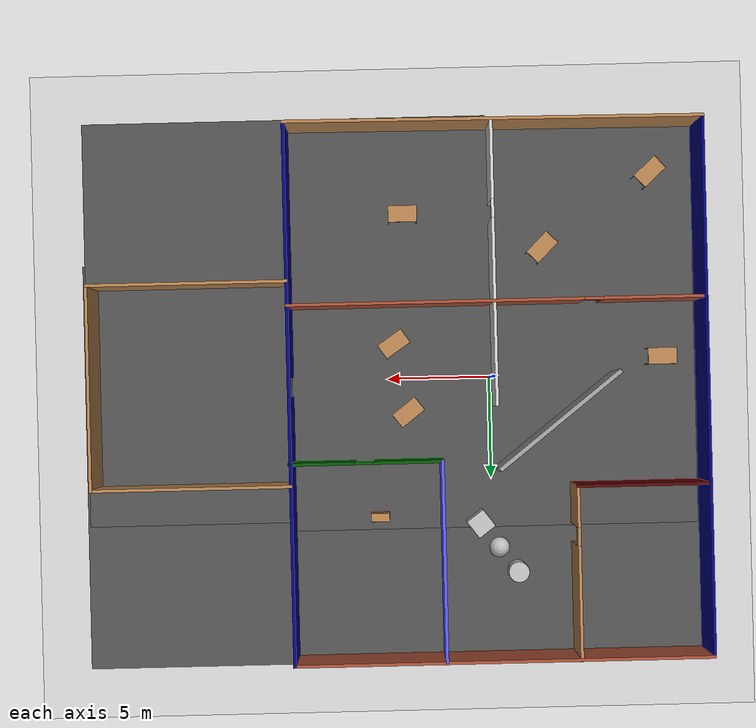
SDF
<sdf version="1.6">
 <world name="default">
  <light name="sun" type="directional">
   <pose>0 0 10 0 -0 0</pose>
   <diffuse>0.8 0.8 0.8 1</diffuse>
   <specular>0.1 0.1 0.1 1</specular>
   <attenuation>
    <range>1000</range>
    <constant>0.9</constant>
    <linear>0.01</linear>
    <quadratic>0.001</quadratic>
   </attenuation>
   <direction>-0.5 0.5 -1</direction>
  </light>
  <model name="ground_plane">
   <static>1</static>
   <link name="link">
    <collision name="collision">
     <geometry><plane><normal>0 0 1</normal><size>100 100</size></plane></geometry>
     <surface><friction><ode><mu>100</mu><mu2>50</mu2></ode></friction></surface>
    </collision>
    <visual name="visual">
     <cast_shadows>0</cast_shadows>
     <geometry><plane><normal>0 0 1</normal><size>100 100</size></plane></geometry>
     <material>
      <script><uri>file://media/materials/scripts/gazebo.material</uri><name>Gazebo/Grey</name></script>
     </material>
    </visual>
   </link>
  </model>
  <gravity>0 0 -9.8</gravity>
  <magnetic_field>6e-06 2.3e-05 -4.2e-05</magnetic_field>
  <atmosphere type="adiabatic"/>
  <physics name="default_physics" default="0" type="ode">
   <max_step_size>0.001</max_step_size>
   <real_time_factor>1</real_time_factor>
   <real_time_update_rate>1000</real_time_update_rate>
  </physics>
  <scene><ambient>0.4 0.4 0.4 1</ambient><background>0.7 0.7 0.7 1</background><shadows>1</shadows></scene>
  <spherical_coordinates>
   <surface_model>EARTH_WGS84</surface_model>
   <latitude_deg>0</latitude_deg>
   <longitude_deg>0</longitude_deg>
   <elevation>0</elevation>
   <heading_deg>0</heading_deg>
  </spherical_coordinates>
  <model name="asphalt_plane_2">
   <static>1</static>
   <link name="link">
    <collision name="collision"><geometry><box><size>20 20 0.1</size></box></geometry></collision>
    <visual name="visual">
     <cast_shadows>0</cast_shadows>
     <geometry><box><size>20 20 0.1</size></box></geometry>
     <material>
      <script>
       <uri>model://asphalt_plane/materials/scripts</uri>
       <uri>model://asphalt_plane/materials/textures</uri>
       <name>vrc/asphalt</name>
      </script>
     </material>
    </visual>
   </link>
   <pose>-0.236118 -2.56824 0 0 -0 0</pose>
  </model>
  <model name="bookshelf">
   <static>1</static>
   <link name="link">
    <inertial><mass>1</mass></inertial>
    <collision name="back">
     <pose>0 0.005 0.6 0 -0 0</pose>
     <geometry><box><size>0.9 0.01 1.2</size></box></geometry>
    </collision>
    <visual name="visual1">
     <pose>0 0.005 0.6 0 -0 0</pose>
     <geometry><box><size>0.9 0.01 1.2</size></box></geometry>
     <material>
      <script><uri>file://media/materials/scripts/gazebo.material</uri><name>Gazebo/Wood</name></script>
     </material>
    </visual>
    <collision name="left_side">
     <pose>0.45 -0.195 0.6 0 -0 0</pose>
     <geometry><box><size>0.02 0.4 1.2</size></box></geometry>
    </collision>
    <visual name="visual2">
     <pose>0.45 -0.195 0.6 0 -0 0</pose>
     <geometry><box><size>0.02 0.4 1.2</size></box></geometry>
     <material>
      <script><uri>file://media/materials/scripts/gazebo.material</uri><name>Gazebo/Wood</name></script>
     </material>
    </visual>
    <collision name="right_side">
     <pose>-0.45 -0.195 0.6 0 -0 0</pose>
     <geometry><box><size>0.02 0.4 1.2</size></box></geometry>
    </collision>
    <visual name="visual3">
     <pose>-0.45 -0.195 0.6 0 -0 0</pose>
     <geometry><box><size>0.02 0.4 1.2</size></box></geometry>
     <material>
      <script><uri>file://media/materials/scripts/gazebo.material</uri><name>Gazebo/Wood</name></script>
     </material>
    </visual>
    <collision name="bottom">
     <pose>0 -0.195 0.03 0 -0 0</pose>
     <geometry><box><size>0.88 0.4 0.06</size></box></geometry>
    </collision>
    <visual name="visual4">
     <pose>0 -0.195 0.03 0 -0 0</pose>
     <geometry><box><size>0.88 0.4 0.06</size></box></geometry>
     <material>
      <script><uri>file://media/materials/scripts/gazebo.material</uri><name>Gazebo/Wood</name></script>
     </material>
    </visual>
    <collision name="top">
     <pose>0 -0.195 1.19 0 -0 0</pose>
     <geometry><box><size>0.88 0.4 0.02</size></box></geometry>
    </collision>
    <visual name="visual5">
     <pose>0 -0.195 1.19 0 -0 0</pose>
     <geometry><box><size>0.88 0.4 0.02</size></box></geometry>
     <material>
      <script><uri>file://media/materials/scripts/gazebo.material</uri><name>Gazebo/Wood</name></script>
     </material>
    </visual>
    <collision name="low_shelf">
     <pose>0 -0.195 0.43 0 -0 0</pose>
     <geometry><box><size>0.88 0.4 0.02</size></box></geometry>
    </collision>
    <visual name="visual6">
     <pose>0 -0.195 0.43 0 -0 0</pose>
     <geometry><box><size>0.88 0.4 0.02</size></box></geometry>
     <material>
      <script><uri>file://media/materials/scripts/gazebo.material</uri><name>Gazebo/Wood</name></script>
     </material>
    </visual>
    <collision name="high_shelf">
     <pose>0 -0.195 0.8 0 -0 0</pose>
     <geometry><box><size>0.88 0.4 0.02</size></box></geometry>
    </collision>
    <visual name="visual7">
     <pose>0 -0.195 0.8 0 -0 0</pose>
     <geometry><box><size>0.88 0.4 0.02</size></box></geometry>
     <material>
      <script><uri>file://media/materials/scripts/gazebo.material</uri><name>Gazebo/Wood</name></script>
     </material>
    </visual>
   </link>
   <pose>5.51817 6.94471 0 0 -0 0</pose>
  </model>
  <model name="table">
   <static>0</static>
   <link name="link">
    <collision name="surface">
     <pose>0 0 1 0 -0 0</pose>
     <geometry><box><size>1.5 0.8 0.03</size></box></geometry>
     <surface><friction><ode><mu>0.6</mu><mu2>0.6</mu2></ode></friction></surface>
    </collision>
    <visual name="visual1">
     <pose>0 0 1 0 -0 0</pose>
     <geometry><box><size>1.4 0.8 0.04</size></box></geometry>
     <material>
      <script><uri>file://media/materials/scripts/gazebo.material</uri><name>Gazebo/Wood</name></script>
     </material>
    </visual>
    <collision name="front_left_leg">
     <pose>0.68 0.38 0.5 0 -0 0</pose>
     <geometry><cylinder><radius>0.02</radius><length>1</length></cylinder></geometry>
    </collision>
    <visual name="front_left_leg">
     <pose>0.68 0.38 0.5 0 -0 0</pose>
     <geometry><cylinder><radius>0.02</radius><length>1</length></cylinder></geometry>
     <material>
      <script><uri>file://media/materials/scripts/gazebo.material</uri><name>Gazebo/Grey</name></script>
     </material>
    </visual>
    <collision name="front_right_leg">
     <pose>0.68 -0.38 0.5 0 -0 0</pose>
     <geometry><cylinder><radius>0.02</radius><length>1</length></cylinder></geometry>
    </collision>
    <visual name="front_right_leg">
     <pose>0.68 -0.38 0.5 0 -0 0</pose>
     <geometry><cylinder><radius>0.02</radius><length>1</length></cylinder></geometry>
     <material>
      <script><uri>file://media/materials/scripts/gazebo.material</uri><name>Gazebo/Grey</name></script>
     </material>
    </visual>
    <collision name="back_right_leg">
     <pose>-0.68 -0.38 0.5 0 -0 0</pose>
     <geometry><cylinder><radius>0.02</radius><length>1</length></cylinder></geometry>
    </collision>
    <visual name="back_right_leg">
     <pose>-0.68 -0.38 0.5 0 -0 0</pose>
     <geometry><cylinder><radius>0.02</radius><length>1</length></cylinder></geometry>
     <material>
      <script><uri>file://media/materials/scripts/gazebo.material</uri><name>Gazebo/Grey</name></script>
     </material>
    </visual>
    <collision name="back_left_leg">
     <pose>-0.68 0.38 0.5 0 -0 0</pose>
     <geometry><cylinder><radius>0.02</radius><length>1</length></cylinder></geometry>
    </collision>
    <visual name="back_left_leg">
     <pose>-0.68 0.38 0.5 0 -0 0</pose>
     <geometry><cylinder><radius>0.02</radius><length>1</length></cylinder></geometry>
     <material>
      <script><uri>file://media/materials/scripts/gazebo.material</uri><name>Gazebo/Grey</name></script>
     </material>
    </visual>
    <inertial>
     <inertia><ixx>1</ixx><ixy>0</ixy><ixz>0</ixz><iyy>1</iyy><iyz>0</iyz><izz>1</izz></inertia>
     <mass>1</mass>
    </inertial>
   </link>
   <pose>-8.45641 -0.835319 0.05 0 -0 0</pose>
  </model>
  <model name="textured_shapes">
   <pose>-0.30757 8.39392 0.55 0 -0 0.643887</pose>
   <link name="box">
    <pose>0 -1.5 0 0 -0 0</pose>
    <collision name="collision"><geometry><box><size>1 1 1</size></box></geometry></collision>
    <visual name="visual">
     <geometry><box><size>1 1 1</size></box></geometry>
     <material>
      <script>
       <uri>model://textured_shapes/materials/scripts</uri>
       <uri>model://textured_shapes/materials/textures</uri>
       <name>TexturedShape/Squares</name>
      </script>
     </material>
    </visual>
    <inertial>
     <inertia><ixx>1</ixx><ixy>0</ixy><ixz>0</ixz><iyy>1</iyy><iyz>0</iyz><izz>1</izz></inertia>
     <mass>1</mass>
    </inertial>
   </link>
   <link name="sphere">
    <collision name="collision"><geometry><sphere><radius>0.5</radius></sphere></geometry></collision>
    <visual name="visual">
     <geometry><sphere><radius>0.5</radius></sphere></geometry>
     <material>
      <script>
       <uri>model://textured_shapes/materials/scripts</uri>
       <uri>model://textured_shapes/materials/textures</uri>
       <name>TexturedShape/Squares</name>
      </script>
     </material>
    </visual>
    <inertial>
     <inertia><ixx>1</ixx><ixy>0</ixy><ixz>0</ixz><iyy>1</iyy><iyz>0</iyz><izz>1</izz></inertia>
     <mass>1</mass>
    </inertial>
   </link>
   <link name="cylinder">
    <pose>0 1.5 0 0 -0 0</pose>
    <collision name="collision">
     <geometry><cylinder><radius>0.5</radius><length>1</length></cylinder></geometry>
    </collision>
    <visual name="visual">
     <geometry><cylinder><radius>0.5</radius><length>1</length></cylinder></geometry>
     <material>
      <script>
       <uri>model://textured_shapes/materials/scripts</uri>
       <uri>model://textured_shapes/materials/textures</uri>
       <name>TexturedShape/Squares</name>
      </script>
     </material>
    </visual>
    <inertial>
     <inertia><ixx>1</ixx><ixy>0</ixy><ixz>0</ixz><iyy>1</iyy><iyz>0</iyz><izz>1</izz></inertia>
     <mass>1</mass>
    </inertial>
   </link>
  </model>
  <model name="asphalt_plane_2_clone">
   <static>1</static>
   <link name="link">
    <collision name="collision"><geometry><box><size>20 20 0.1</size></box></geometry></collision>
    <visual name="visual">
     <cast_shadows>0</cast_shadows>
     <geometry><box><size>20 20 0.1</size></box></geometry>
     <material>
      <script>
       <uri>model://asphalt_plane/materials/scripts</uri>
       <uri>model://asphalt_plane/materials/textures</uri>
       <name>vrc/asphalt</name>
      </script>
     </material>
    </visual>
   </link>
   <pose>-0.270665 3.75732 0 0 -0 0</pose>
  </model>
  <model name="Walls__Doors_w/Colors">
   <pose>4.50975 0.63166 0 0 -0 0</pose>
   <link name="Wall_25">
    <pose>-4.77775 -4.26666 0 0 -0 0</pose>
    <visual name="Wall_25_Visual_0">
     <pose>-7.63868 0 1.25 0 -0 0</pose>
     <geometry><box><size>4.97265 0.15 2.5</size></box></geometry>
     <material>
      <script><uri>file://media/materials/scripts/gazebo.material</uri><name>Gazebo/Bricks</name></script>
      <ambient>1 0 0 1</ambient>
     </material>
    </visual>
    <collision name="Wall_25_Collision_0">
     <geometry><box><size>4.97265 0.15 2.5</size></box></geometry>
     <pose>-7.63868 0 1.25 0 -0 0</pose>
    </collision>
    <visual name="Wall_25_Visual_1">
     <pose>2.93633 0 1.25 0 -0 0</pose>
     <geometry><box><size>14.3774 0.15 2.5</size></box></geometry>
     <material>
      <script><uri>file://media/materials/scripts/gazebo.material</uri><name>Gazebo/Bricks</name></script>
      <ambient>1 0 0 1</ambient>
     </material>
    </visual>
    <collision name="Wall_25_Collision_1">
     <geometry><box><size>14.3774 0.15 2.5</size></box></geometry>
     <pose>2.93633 0 1.25 0 -0 0</pose>
    </collision>
    <visual name="Wall_25_Visual_2">
     <pose>-4.70235 0 2.25 0 -0 0</pose>
     <geometry><box><size>0.9 0.15 0.5</size></box></geometry>
     <material>
      <script><uri>file://media/materials/scripts/gazebo.material</uri><name>Gazebo/Bricks</name></script>
      <ambient>1 0 0 1</ambient>
     </material>
    </visual>
    <collision name="Wall_25_Collision_2">
     <geometry><box><size>0.9 0.15 0.5</size></box></geometry>
     <pose>-4.70235 0 2.25 0 -0 0</pose>
    </collision>
   </link>
   <link name="Wall_35">
    <collision name="Wall_35_Collision">
     <geometry><box><size>6.5 0.15 2.5</size></box></geometry>
     <pose>0 0 1.25 0 -0 0</pose>
    </collision>
    <visual name="Wall_35_Visual">
     <pose>0 0 1.25 0 -0 0</pose>
     <geometry><box><size>6.5 0.15 2.5</size></box></geometry>
     <material>
      <script><uri>file://media/materials/scripts/gazebo.material</uri><name>Gazebo/Grey</name></script>
      <ambient>0.333333 0 0 1</ambient>
     </material>
    </visual>
    <pose>-11.6753 4.71288 0 0 -0 3.14159</pose>
   </link>
   <link name="Wall_40">
    <pose>-8.50029 8.88788 0 0 -0 1.5708</pose>
    <visual name="Wall_40_Visual_0">
     <pose>-3.22212 0 1.25 0 -0 0</pose>
     <geometry><box><size>2.05575 0.15 2.5</size></box></geometry>
     <material>
      <script><uri>file://media/materials/scripts/gazebo.material</uri><name>Gazebo/Wood</name></script>
      <ambient>1 1 1 1</ambient>
     </material>
    </visual>
    <collision name="Wall_40_Collision_0">
     <geometry><box><size>2.05575 0.15 2.5</size></box></geometry>
     <pose>-3.22212 0 1.25 0 -0 0</pose>
    </collision>
    <visual name="Wall_40_Visual_1">
     <pose>1.47788 0 1.25 0 -0 0</pose>
     <geometry><box><size>5.54425 0.15 2.5</size></box></geometry>
     <material>
      <script><uri>file://media/materials/scripts/gazebo.material</uri><name>Gazebo/Wood</name></script>
      <ambient>1 1 1 1</ambient>
     </material>
    </visual>
    <collision name="Wall_40_Collision_1">
     <geometry><box><size>5.54425 0.15 2.5</size></box></geometry>
     <pose>1.47788 0 1.25 0 -0 0</pose>
    </collision>
    <visual name="Wall_40_Visual_2">
     <pose>-1.74425 0 2.25 0 -0 0</pose>
     <geometry><box><size>0.9 0.15 0.5</size></box></geometry>
     <material>
      <script><uri>file://media/materials/scripts/gazebo.material</uri><name>Gazebo/Wood</name></script>
      <ambient>1 1 1 1</ambient>
     </material>
    </visual>
    <collision name="Wall_40_Collision_2">
     <geometry><box><size>0.9 0.15 0.5</size></box></geometry>
     <pose>-1.74425 0 2.25 0 -0 0</pose>
    </collision>
   </link>
   <link name="Wall_42">
    <collision name="Wall_42_Collision">
     <geometry><box><size>9.75 0.15 2.5</size></box></geometry>
     <pose>0 0 1.25 0 -0 0</pose>
    </collision>
    <visual name="Wall_42_Visual">
     <pose>0 0 1.25 0 -0 0</pose>
     <geometry><box><size>9.75 0.15 2.5</size></box></geometry>
     <material>
      <script><uri>file://media/materials/scripts/gazebo.material</uri><name>Gazebo/Grey</name></script>
      <ambient>0.333333 0.333333 1 1</ambient>
     </material>
    </visual>
    <pose>-2.04304 8.17541 0 0 0 -1.5708</pose>
   </link>
   <link name="Wall_43">
    <pose>1.63196 3.37541 0 0 -0 0</pose>
    <visual name="Wall_43_Visual_0">
     <pose>-2.04527 0 1.25 0 -0 0</pose>
     <geometry><box><size>3.40945 0.15 2.5</size></box></geometry>
     <material>
      <script><uri>file://media/materials/scripts/gazebo.material</uri><name>Gazebo/Grey</name></script>
      <ambient>0 0.333333 0 1</ambient>
     </material>
    </visual>
    <collision name="Wall_43_Collision_0">
     <geometry><box><size>3.40945 0.15 2.5</size></box></geometry>
     <pose>-2.04527 0 1.25 0 -0 0</pose>
    </collision>
    <visual name="Wall_43_Visual_1">
     <pose>2.15473 0 1.25 0 -0 0</pose>
     <geometry><box><size>3.19055 0.15 2.5</size></box></geometry>
     <material>
      <script><uri>file://media/materials/scripts/gazebo.material</uri><name>Gazebo/Grey</name></script>
      <ambient>0 0.333333 0 1</ambient>
     </material>
    </visual>
    <collision name="Wall_43_Collision_1">
     <geometry><box><size>3.19055 0.15 2.5</size></box></geometry>
     <pose>2.15473 0 1.25 0 -0 0</pose>
    </collision>
    <visual name="Wall_43_Visual_2">
     <pose>0.109451 0 2.25 0 -0 0</pose>
     <geometry><box><size>0.9 0.15 0.5</size></box></geometry>
     <material>
      <script><uri>file://media/materials/scripts/gazebo.material</uri><name>Gazebo/Grey</name></script>
      <ambient>0 0.333333 0 1</ambient>
     </material>
    </visual>
    <collision name="Wall_43_Collision_2">
     <geometry><box><size>0.9 0.15 0.5</size></box></geometry>
     <pose>0.109451 0 2.25 0 -0 0</pose>
    </collision>
   </link>
   <link name="Wall_45">
    <pose>-4.71817 -6.07667 0 0 0 -1.5708</pose>
    <visual name="Wall_45_Visual_0">
     <pose>-2.35428 0 1.25 0 -0 0</pose>
     <geometry><box><size>9.04144 0.15 2.5</size></box></geometry>
     <material>
      <script><uri>file://media/materials/scripts/gazebo.material</uri><name>Gazebo/CeilingTiled</name></script>
      <ambient>0.435294 0.796078 0.67451 1</ambient>
     </material>
    </visual>
    <collision name="Wall_45_Collision_0">
     <geometry><box><size>9.04144 0.15 2.5</size></box></geometry>
     <pose>-2.35428 0 1.25 0 -0 0</pose>
    </collision>
    <visual name="Wall_45_Visual_1">
     <pose>4.97072 0 1.25 0 -0 0</pose>
     <geometry><box><size>3.80856 0.15 2.5</size></box></geometry>
     <material>
      <script><uri>file://media/materials/scripts/gazebo.material</uri><name>Gazebo/CeilingTiled</name></script>
      <ambient>0.435294 0.796078 0.67451 1</ambient>
     </material>
    </visual>
    <collision name="Wall_45_Collision_1">
     <geometry><box><size>3.80856 0.15 2.5</size></box></geometry>
     <pose>4.97072 0 1.25 0 -0 0</pose>
    </collision>
    <visual name="Wall_45_Visual_2">
     <pose>2.61644 0 2.25 0 -0 0</pose>
     <geometry><box><size>0.9 0.15 0.5</size></box></geometry>
     <material>
      <script><uri>file://media/materials/scripts/gazebo.material</uri><name>Gazebo/CeilingTiled</name></script>
      <ambient>0.435294 0.796078 0.67451 1</ambient>
     </material>
    </visual>
    <collision name="Wall_45_Collision_2">
     <geometry><box><size>0.9 0.15 0.5</size></box></geometry>
     <pose>2.61644 0 2.25 0 -0 0</pose>
    </collision>
   </link>
   <link name="Wall_47">
    <collision name="Wall_47_Collision">
     <geometry><box><size>9.75 0.15 2.5</size></box></geometry>
     <pose>0 0 1.25 0 -0 0</pose>
    </collision>
    <visual name="Wall_47_Visual">
     <pose>0 0 1.25 0 -0 0</pose>
     <geometry><box><size>9.75 0.15 2.5</size></box></geometry>
     <material>
      <script><uri>file://media/materials/scripts/gazebo.material</uri><name>Gazebo/Wood</name></script>
      <ambient>1 1 1 1</ambient>
     </material>
    </visual>
    <pose>10.0505 -5.4312 0 0 -0 0</pose>
   </link>
   <link name="Wall_48">
    <collision name="Wall_48_Collision">
     <geometry><box><size>10 0.15 2.5</size></box></geometry>
     <pose>0 0 1.25 0 -0 0</pose>
    </collision>
    <visual name="Wall_48_Visual">
     <pose>0 0 1.25 0 -0 0</pose>
     <geometry><box><size>10 0.15 2.5</size></box></geometry>
     <material>
      <script><uri>file://media/materials/scripts/gazebo.material</uri><name>Gazebo/Wood</name></script>
      <ambient>1 1 1 1</ambient>
     </material>
    </visual>
    <pose>14.8505 -0.506197 0 0 -0 1.5708</pose>
   </link>
   <link name="Wall_49">
    <collision name="Wall_49_Collision">
     <geometry><box><size>9.75 0.15 2.5</size></box></geometry>
     <pose>0 0 1.25 0 -0 0</pose>
    </collision>
    <visual name="Wall_49_Visual">
     <pose>0 0 1.25 0 -0 0</pose>
     <geometry><box><size>9.75 0.15 2.5</size></box></geometry>
     <material>
      <script><uri>file://media/materials/scripts/gazebo.material</uri><name>Gazebo/Wood</name></script>
      <ambient>1 1 1 1</ambient>
     </material>
    </visual>
    <pose>10.0505 4.4188 0 0 -0 3.14159</pose>
   </link>
   <link name="Wall_6">
    <collision name="Wall_6_Collision">
     <geometry><box><size>20.25 0.15 2.5</size></box></geometry>
     <pose>0 0 1.25 0 -0 0</pose>
    </collision>
    <visual name="Wall_6_Visual">
     <pose>0 0 1.25 0 -0 0</pose>
     <geometry><box><size>20.25 0.15 2.5</size></box></geometry>
     <material>
      <script><uri>file://media/materials/scripts/gazebo.material</uri><name>Gazebo/Wood</name></script>
      <ambient>1 1 1 1</ambient>
     </material>
    </visual>
    <pose>-4.80024 -12.9916 0 0 0 -0.00704</pose>
   </link>
   <link name="Wall_7">
    <pose>5.24976 -0.012355 0 0 -0 1.5708</pose>
    <visual name="Wall_7_Visual_0">
     <pose>-6.95468 0 1.25 0 -0 0</pose>
     <geometry><box><size>12.3406 0.15 2.5</size></box></geometry>
     <material>
      <script><uri>file://media/materials/scripts/gazebo.material</uri><name>Gazebo/Grey</name></script>
      <ambient>0 0 0.498039 1</ambient>
     </material>
    </visual>
    <collision name="Wall_7_Collision_0">
     <geometry><box><size>12.3406 0.15 2.5</size></box></geometry>
     <pose>-6.95468 0 1.25 0 -0 0</pose>
    </collision>
    <visual name="Wall_7_Visual_1">
     <pose>6.62032 0 1.25 0 -0 0</pose>
     <geometry><box><size>13.0094 0.15 2.5</size></box></geometry>
     <material>
      <script><uri>file://media/materials/scripts/gazebo.material</uri><name>Gazebo/Grey</name></script>
      <ambient>0 0 0.498039 1</ambient>
     </material>
    </visual>
    <collision name="Wall_7_Collision_1">
     <geometry><box><size>13.0094 0.15 2.5</size></box></geometry>
     <pose>6.62032 0 1.25 0 -0 0</pose>
    </collision>
    <visual name="Wall_7_Visual_2">
     <pose>-0.33436 0 2.25 0 -0 0</pose>
     <geometry><box><size>0.9 0.15 0.5</size></box></geometry>
     <material>
      <script><uri>file://media/materials/scripts/gazebo.material</uri><name>Gazebo/Grey</name></script>
      <ambient>0 0 0.498039 1</ambient>
     </material>
    </visual>
    <collision name="Wall_7_Collision_2">
     <geometry><box><size>0.9 0.15 0.5</size></box></geometry>
     <pose>-0.33436 0 2.25 0 -0 0</pose>
    </collision>
   </link>
   <link name="Wall_8">
    <collision name="Wall_8_Collision">
     <geometry><box><size>20.25 0.15 2.5</size></box></geometry>
     <pose>0 0 1.25 0 -0 0</pose>
    </collision>
    <visual name="Wall_8_Visual">
     <pose>0 0 1.25 0 -0 0</pose>
     <geometry><box><size>20.25 0.15 2.5</size></box></geometry>
     <material>
      <script><uri>file://media/materials/scripts/gazebo.material</uri><name>Gazebo/Bricks</name></script>
      <ambient>1 1 1 1</ambient>
     </material>
    </visual>
    <pose>-4.80024 13.0376 0 0 -0 3.14159</pose>
   </link>
   <link name="Wall_9">
    <collision name="Wall_9_Collision">
     <geometry><box><size>26.1085 0.15 2.5</size></box></geometry>
     <pose>0 0 1.25 0 -0 0</pose>
    </collision>
    <visual name="Wall_9_Visual">
     <pose>0 0 1.25 0 -0 0</pose>
     <geometry><box><size>26.1085 0.15 2.5</size></box></geometry>
     <material>
      <script><uri>file://media/materials/scripts/gazebo.material</uri><name>Gazebo/Grey</name></script>
      <ambient>0 0 0.498039 1</ambient>
     </material>
    </visual>
    <pose>-14.8502 0.058402 0 0 0 -1.5708</pose>
   </link>
   <static>1</static>
  </model>
  <model name="asphalt_plane">
   <static>1</static>
   <link name="link">
    <collision name="collision"><geometry><box><size>20 20 0.1</size></box></geometry></collision>
    <visual name="visual">
     <cast_shadows>0</cast_shadows>
     <geometry><box><size>20 20 0.1</size></box></geometry>
     <material>
      <script>
       <uri>model://asphalt_plane/materials/scripts</uri>
       <uri>model://asphalt_plane/materials/textures</uri>
       <name>vrc/asphalt</name>
      </script>
     </material>
    </visual>
   </link>
   <pose>9.93371 -3 0 0 -0 0</pose>
  </model>
  <model name="asphalt_plane_0">
   <static>1</static>
   <link name="link">
    <collision name="collision"><geometry><box><size>20 20 0.1</size></box></geometry></collision>
    <visual name="visual">
     <cast_shadows>0</cast_shadows>
     <geometry><box><size>20 20 0.1</size></box></geometry>
     <material>
      <script>
       <uri>model://asphalt_plane/materials/scripts</uri>
       <uri>model://asphalt_plane/materials/textures</uri>
       <name>vrc/asphalt</name>
      </script>
     </material>
    </visual>
   </link>
   <pose>10.037 4.04071 0 0 -0 0</pose>
  </model>
  <model name="table_0">
   <static>0</static>
   <link name="link">
    <collision name="surface">
     <pose>0 0 1 0 -0 0</pose>
     <geometry><box><size>1.5 0.8 0.03</size></box></geometry>
     <surface><friction><ode><mu>0.6</mu><mu2>0.6</mu2></ode></friction></surface>
    </collision>
    <visual name="visual1">
     <pose>0 0 1 0 -0 0</pose>
     <geometry><box><size>1.4 0.8 0.04</size></box></geometry>
     <material>
      <script><uri>file://media/materials/scripts/gazebo.material</uri><name>Gazebo/Wood</name></script>
     </material>
    </visual>
    <collision name="front_left_leg">
     <pose>0.68 0.38 0.5 0 -0 0</pose>
     <geometry><cylinder><radius>0.02</radius><length>1</length></cylinder></geometry>
    </collision>
    <visual name="front_left_leg">
     <pose>0.68 0.38 0.5 0 -0 0</pose>
     <geometry><cylinder><radius>0.02</radius><length>1</length></cylinder></geometry>
     <material>
      <script><uri>file://media/materials/scripts/gazebo.material</uri><name>Gazebo/Grey</name></script>
     </material>
    </visual>
    <collision name="front_right_leg">
     <pose>0.68 -0.38 0.5 0 -0 0</pose>
     <geometry><cylinder><radius>0.02</radius><length>1</length></cylinder></geometry>
    </collision>
    <visual name="front_right_leg">
     <pose>0.68 -0.38 0.5 0 -0 0</pose>
     <geometry><cylinder><radius>0.02</radius><length>1</length></cylinder></geometry>
     <material>
      <script><uri>file://media/materials/scripts/gazebo.material</uri><name>Gazebo/Grey</name></script>
     </material>
    </visual>
    <collision name="back_right_leg">
     <pose>-0.68 -0.38 0.5 0 -0 0</pose>
     <geometry><cylinder><radius>0.02</radius><length>1</length></cylinder></geometry>
    </collision>
    <visual name="back_right_leg">
     <pose>-0.68 -0.38 0.5 0 -0 0</pose>
     <geometry><cylinder><radius>0.02</radius><length>1</length></cylinder></geometry>
     <material>
      <script><uri>file://media/materials/scripts/gazebo.material</uri><name>Gazebo/Grey</name></script>
     </material>
    </visual>
    <collision name="back_left_leg">
     <pose>-0.68 0.38 0.5 0 -0 0</pose>
     <geometry><cylinder><radius>0.02</radius><length>1</length></cylinder></geometry>
    </collision>
    <visual name="back_left_leg">
     <pose>-0.68 0.38 0.5 0 -0 0</pose>
     <geometry><cylinder><radius>0.02</radius><length>1</length></cylinder></geometry>
     <material>
      <script><uri>file://media/materials/scripts/gazebo.material</uri><name>Gazebo/Grey</name></script>
     </material>
    </visual>
    <inertial>
     <inertia><ixx>1</ixx><ixy>0</ixy><ixz>0</ixz><iyy>1</iyy><iyz>0</iyz><izz>1</izz></inertia>
     <mass>1</mass>
    </inertial>
   </link>
   <pose>4.11112 -8.08132 0.05 0 -0 0</pose>
  </model>
  <model name="grey_wall">
   <static>1</static>
   <link name="link">
    <pose>0 0 1.4 0 -0 0</pose>
    <collision name="collision"><geometry><box><size>7.5 0.2 2.8</size></box></geometry></collision>
    <visual name="visual">
     <cast_shadows>0</cast_shadows>
     <geometry><box><size>7.5 0.2 2.8</size></box></geometry>
     <material>
      <script>
       <uri>model://grey_wall/materials/scripts</uri>
       <uri>model://grey_wall/materials/textures</uri>
       <name>vrc/grey_wall</name>
      </script>
     </material>
    </visual>
   </link>
   <pose>-3.18514 2.23987 4e-06 0.01417 -0.022146 0.663578</pose>
  </model>
  <model name="table_1">
   <static>0</static>
   <link name="link">
    <collision name="surface">
     <pose>0 0 1 0 -0 0</pose>
     <geometry><box><size>1.5 0.8 0.03</size></box></geometry>
     <surface><friction><ode><mu>0.6</mu><mu2>0.6</mu2></ode></friction></surface>
    </collision>
    <visual name="visual1">
     <pose>0 0 1 0 -0 0</pose>
     <geometry><box><size>1.4 0.8 0.04</size></box></geometry>
     <material>
      <script><uri>file://media/materials/scripts/gazebo.material</uri><name>Gazebo/Wood</name></script>
     </material>
    </visual>
    <collision name="front_left_leg">
     <pose>0.68 0.38 0.5 0 -0 0</pose>
     <geometry><cylinder><radius>0.02</radius><length>1</length></cylinder></geometry>
    </collision>
    <visual name="front_left_leg">
     <pose>0.68 0.38 0.5 0 -0 0</pose>
     <geometry><cylinder><radius>0.02</radius><length>1</length></cylinder></geometry>
     <material>
      <script><uri>file://media/materials/scripts/gazebo.material</uri><name>Gazebo/Grey</name></script>
     </material>
    </visual>
    <collision name="front_right_leg">
     <pose>0.68 -0.38 0.5 0 -0 0</pose>
     <geometry><cylinder><radius>0.02</radius><length>1</length></cylinder></geometry>
    </collision>
    <visual name="front_right_leg">
     <pose>0.68 -0.38 0.5 0 -0 0</pose>
     <geometry><cylinder><radius>0.02</radius><length>1</length></cylinder></geometry>
     <material>
      <script><uri>file://media/materials/scripts/gazebo.material</uri><name>Gazebo/Grey</name></script>
     </material>
    </visual>
    <collision name="back_right_leg">
     <pose>-0.68 -0.38 0.5 0 -0 0</pose>
     <geometry><cylinder><radius>0.02</radius><length>1</length></cylinder></geometry>
    </collision>
    <visual name="back_right_leg">
     <pose>-0.68 -0.38 0.5 0 -0 0</pose>
     <geometry><cylinder><radius>0.02</radius><length>1</length></cylinder></geometry>
     <material>
      <script><uri>file://media/materials/scripts/gazebo.material</uri><name>Gazebo/Grey</name></script>
     </material>
    </visual>
    <collision name="back_left_leg">
     <pose>-0.68 0.38 0.5 0 -0 0</pose>
     <geometry><cylinder><radius>0.02</radius><length>1</length></cylinder></geometry>
    </collision>
    <visual name="back_left_leg">
     <pose>-0.68 0.38 0.5 0 -0 0</pose>
     <geometry><cylinder><radius>0.02</radius><length>1</length></cylinder></geometry>
     <material>
      <script><uri>file://media/materials/scripts/gazebo.material</uri><name>Gazebo/Grey</name></script>
     </material>
    </visual>
    <inertial>
     <inertia><ixx>1</ixx><ixy>0</ixy><ixz>0</ixz><iyy>1</iyy><iyz>0</iyz><izz>1</izz></inertia>
     <mass>1</mass>
    </inertial>
   </link>
   <pose>4.6721 -1.71836 0.05 0 -0 0.603298</pose>
  </model>
  <model name="table_2">
   <static>0</static>
   <link name="link">
    <collision name="surface">
     <pose>0 0 1 0 -0 0</pose>
     <geometry><box><size>1.5 0.8 0.03</size></box></geometry>
     <surface><friction><ode><mu>0.6</mu><mu2>0.6</mu2></ode></friction></surface>
    </collision>
    <visual name="visual1">
     <pose>0 0 1 0 -0 0</pose>
     <geometry><box><size>1.4 0.8 0.04</size></box></geometry>
     <material>
      <script><uri>file://media/materials/scripts/gazebo.material</uri><name>Gazebo/Wood</name></script>
     </material>
    </visual>
    <collision name="front_left_leg">
     <pose>0.68 0.38 0.5 0 -0 0</pose>
     <geometry><cylinder><radius>0.02</radius><length>1</length></cylinder></geometry>
    </collision>
    <visual name="front_left_leg">
     <pose>0.68 0.38 0.5 0 -0 0</pose>
     <geometry><cylinder><radius>0.02</radius><length>1</length></cylinder></geometry>
     <material>
      <script><uri>file://media/materials/scripts/gazebo.material</uri><name>Gazebo/Grey</name></script>
     </material>
    </visual>
    <collision name="front_right_leg">
     <pose>0.68 -0.38 0.5 0 -0 0</pose>
     <geometry><cylinder><radius>0.02</radius><length>1</length></cylinder></geometry>
    </collision>
    <visual name="front_right_leg">
     <pose>0.68 -0.38 0.5 0 -0 0</pose>
     <geometry><cylinder><radius>0.02</radius><length>1</length></cylinder></geometry>
     <material>
      <script><uri>file://media/materials/scripts/gazebo.material</uri><name>Gazebo/Grey</name></script>
     </material>
    </visual>
    <collision name="back_right_leg">
     <pose>-0.68 -0.38 0.5 0 -0 0</pose>
     <geometry><cylinder><radius>0.02</radius><length>1</length></cylinder></geometry>
    </collision>
    <visual name="back_right_leg">
     <pose>-0.68 -0.38 0.5 0 -0 0</pose>
     <geometry><cylinder><radius>0.02</radius><length>1</length></cylinder></geometry>
     <material>
      <script><uri>file://media/materials/scripts/gazebo.material</uri><name>Gazebo/Grey</name></script>
     </material>
    </visual>
    <collision name="back_left_leg">
     <pose>-0.68 0.38 0.5 0 -0 0</pose>
     <geometry><cylinder><radius>0.02</radius><length>1</length></cylinder></geometry>
    </collision>
    <visual name="back_left_leg">
     <pose>-0.68 0.38 0.5 0 -0 0</pose>
     <geometry><cylinder><radius>0.02</radius><length>1</length></cylinder></geometry>
     <material>
      <script><uri>file://media/materials/scripts/gazebo.material</uri><name>Gazebo/Grey</name></script>
     </material>
    </visual>
    <inertial>
     <inertia><ixx>1</ixx><ixy>0</ixy><ixz>0</ixz><iyy>1</iyy><iyz>0</iyz><izz>1</izz></inertia>
     <mass>1</mass>
    </inertial>
   </link>
   <pose>4.02933 1.6454 0.05 0 -0 0.661845</pose>
  </model>
  <model name="table_0_clone">
   <static>0</static>
   <link name="link">
    <collision name="surface">
     <pose>0 0 1 0 -0 0</pose>
     <geometry><box><size>1.5 0.8 0.03</size></box></geometry>
     <surface><friction><ode><mu>0.6</mu><mu2>0.6</mu2></ode></friction></surface>
    </collision>
    <visual name="visual1">
     <pose>0 0 1 0 -0 0</pose>
     <geometry><box><size>1.4 0.8 0.04</size></box></geometry>
     <material>
      <script><uri>file://media/materials/scripts/gazebo.material</uri><name>Gazebo/Wood</name></script>
     </material>
    </visual>
    <collision name="front_left_leg">
     <pose>0.68 0.38 0.5 0 -0 0</pose>
     <geometry><cylinder><radius>0.02</radius><length>1</length></cylinder></geometry>
    </collision>
    <visual name="front_left_leg">
     <pose>0.68 0.38 0.5 0 -0 0</pose>
     <geometry><cylinder><radius>0.02</radius><length>1</length></cylinder></geometry>
     <material>
      <script><uri>file://media/materials/scripts/gazebo.material</uri><name>Gazebo/Grey</name></script>
     </material>
    </visual>
    <collision name="front_right_leg">
     <pose>0.68 -0.38 0.5 0 -0 0</pose>
     <geometry><cylinder><radius>0.02</radius><length>1</length></cylinder></geometry>
    </collision>
    <visual name="front_right_leg">
     <pose>0.68 -0.38 0.5 0 -0 0</pose>
     <geometry><cylinder><radius>0.02</radius><length>1</length></cylinder></geometry>
     <material>
      <script><uri>file://media/materials/scripts/gazebo.material</uri><name>Gazebo/Grey</name></script>
     </material>
    </visual>
    <collision name="back_right_leg">
     <pose>-0.68 -0.38 0.5 0 -0 0</pose>
     <geometry><cylinder><radius>0.02</radius><length>1</length></cylinder></geometry>
    </collision>
    <visual name="back_right_leg">
     <pose>-0.68 -0.38 0.5 0 -0 0</pose>
     <geometry><cylinder><radius>0.02</radius><length>1</length></cylinder></geometry>
     <material>
      <script><uri>file://media/materials/scripts/gazebo.material</uri><name>Gazebo/Grey</name></script>
     </material>
    </visual>
    <collision name="back_left_leg">
     <pose>-0.68 0.38 0.5 0 -0 0</pose>
     <geometry><cylinder><radius>0.02</radius><length>1</length></cylinder></geometry>
    </collision>
    <visual name="back_left_leg">
     <pose>-0.68 0.38 0.5 0 -0 0</pose>
     <geometry><cylinder><radius>0.02</radius><length>1</length></cylinder></geometry>
     <material>
      <script><uri>file://media/materials/scripts/gazebo.material</uri><name>Gazebo/Grey</name></script>
     </material>
    </visual>
    <inertial>
     <inertia><ixx>1</ixx><ixy>0</ixy><ixz>0</ixz><iyy>1</iyy><iyz>0</iyz><izz>1</izz></inertia>
     <mass>1</mass>
    </inertial>
   </link>
   <pose>-8.04629 -9.85646 0.05 0 -0 0.74218</pose>
  </model>
  <model name="table_0_clone_0">
   <static>0</static>
   <link name="link">
    <collision name="surface">
     <pose>0 0 1 0 -0 0</pose>
     <geometry><box><size>1.5 0.8 0.03</size></box></geometry>
     <surface><friction><ode><mu>0.6</mu><mu2>0.6</mu2></ode></friction></surface>
    </collision>
    <visual name="visual1">
     <pose>0 0 1 0 -0 0</pose>
     <geometry><box><size>1.4 0.8 0.04</size></box></geometry>
     <material>
      <script><uri>file://media/materials/scripts/gazebo.material</uri><name>Gazebo/Wood</name></script>
     </material>
    </visual>
    <collision name="front_left_leg">
     <pose>0.68 0.38 0.5 0 -0 0</pose>
     <geometry><cylinder><radius>0.02</radius><length>1</length></cylinder></geometry>
    </collision>
    <visual name="front_left_leg">
     <pose>0.68 0.38 0.5 0 -0 0</pose>
     <geometry><cylinder><radius>0.02</radius><length>1</length></cylinder></geometry>
     <material>
      <script><uri>file://media/materials/scripts/gazebo.material</uri><name>Gazebo/Grey</name></script>
     </material>
    </visual>
    <collision name="front_right_leg">
     <pose>0.68 -0.38 0.5 0 -0 0</pose>
     <geometry><cylinder><radius>0.02</radius><length>1</length></cylinder></geometry>
    </collision>
    <visual name="front_right_leg">
     <pose>0.68 -0.38 0.5 0 -0 0</pose>
     <geometry><cylinder><radius>0.02</radius><length>1</length></cylinder></geometry>
     <material>
      <script><uri>file://media/materials/scripts/gazebo.material</uri><name>Gazebo/Grey</name></script>
     </material>
    </visual>
    <collision name="back_right_leg">
     <pose>-0.68 -0.38 0.5 0 -0 0</pose>
     <geometry><cylinder><radius>0.02</radius><length>1</length></cylinder></geometry>
    </collision>
    <visual name="back_right_leg">
     <pose>-0.68 -0.38 0.5 0 -0 0</pose>
     <geometry><cylinder><radius>0.02</radius><length>1</length></cylinder></geometry>
     <material>
      <script><uri>file://media/materials/scripts/gazebo.material</uri><name>Gazebo/Grey</name></script>
     </material>
    </visual>
    <collision name="back_left_leg">
     <pose>-0.68 0.38 0.5 0 -0 0</pose>
     <geometry><cylinder><radius>0.02</radius><length>1</length></cylinder></geometry>
    </collision>
    <visual name="back_left_leg">
     <pose>-0.68 0.38 0.5 0 -0 0</pose>
     <geometry><cylinder><radius>0.02</radius><length>1</length></cylinder></geometry>
     <material>
      <script><uri>file://media/materials/scripts/gazebo.material</uri><name>Gazebo/Grey</name></script>
     </material>
    </visual>
    <inertial>
     <inertia><ixx>1</ixx><ixy>0</ixy><ixz>0</ixz><iyy>1</iyy><iyz>0</iyz><izz>1</izz></inertia>
     <mass>1</mass>
    </inertial>
   </link>
   <pose>-2.70032 -6.28133 0.05 0 -0 0.788199</pose>
  </model>
 </world>
</sdf>
